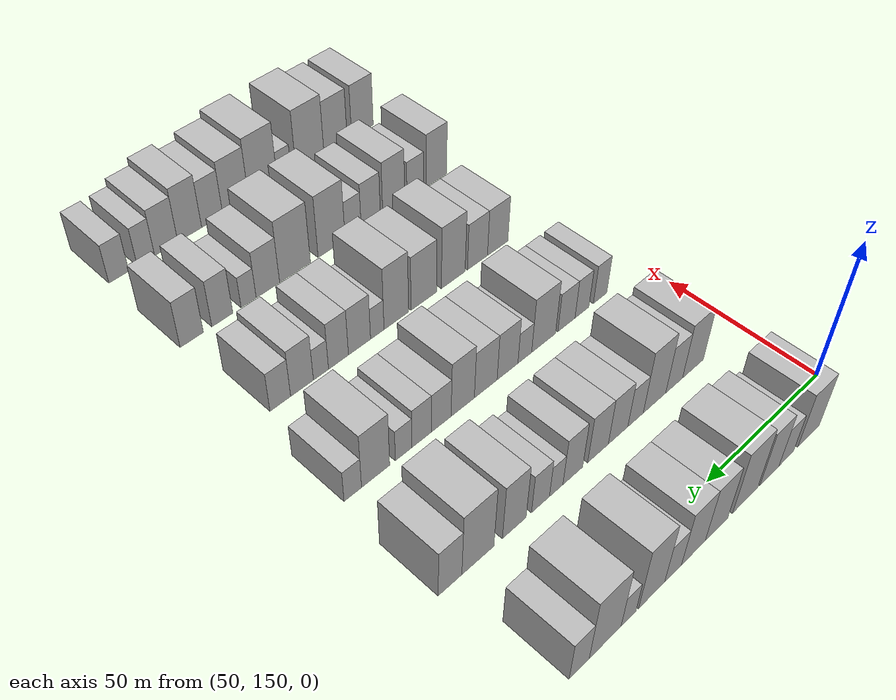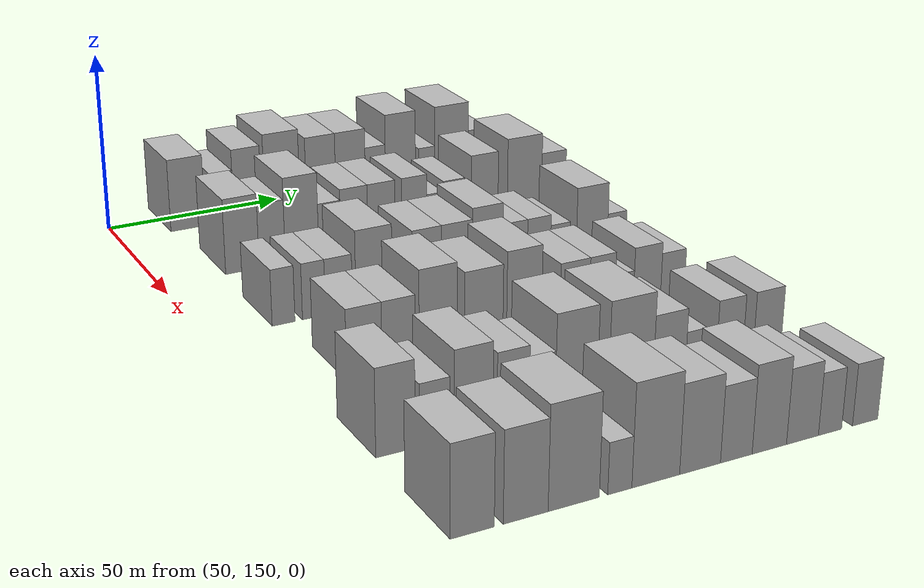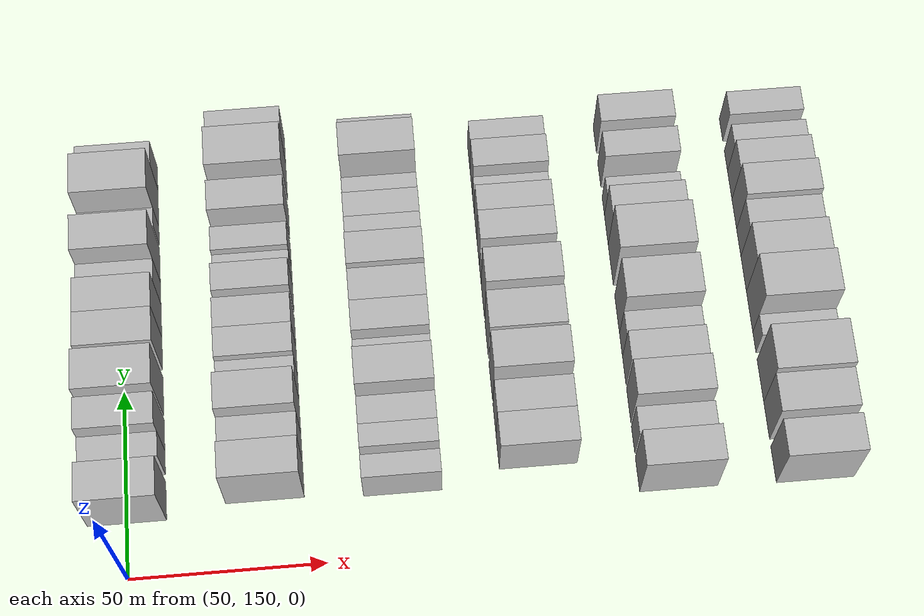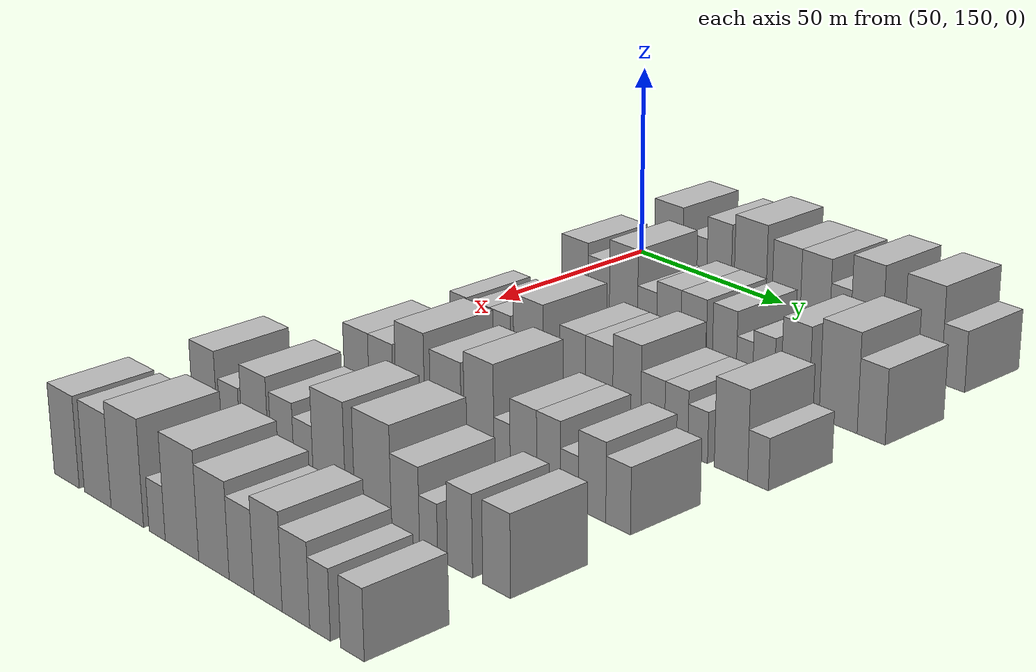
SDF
<sdf version="1.6">
 <world name="default">
  <model name="building_77">
   <static>1</static>
   <pose>50.0000 169.6008 0 0.000000 0.000000 0.000000</pose>
   <link name="link">
    <pose>0 0 10.50 0 0 0</pose>
    <collision name="collision"><geometry><box><size>20.0000 10.0778 21.0000</size></box></geometry></collision>
    <visual name="visual">
     <cast_shadows>0</cast_shadows>
     <geometry><box><size>20.0000 10.0778 21.0000</size></box></geometry>
     <material>
      <script>
       <uri>model://HANNAS_wall/materials/scripts</uri>
       <uri>model://HANNAS_wall/materials/textures</uri>
       <name>vrc/HANNAS_wall</name>
      </script>
     </material>
    </visual>
   </link>
  </model>
  <model name="building_78">
   <static>1</static>
   <pose>50.0000 179.9254 0 0.000000 0.000000 0.000000</pose>
   <link name="link">
    <pose>0 0 7.50 0 0 0</pose>
    <collision name="collision"><geometry><box><size>20.0000 6.5714 15.0000</size></box></geometry></collision>
    <visual name="visual">
     <cast_shadows>0</cast_shadows>
     <geometry><box><size>20.0000 6.5714 15.0000</size></box></geometry>
     <material>
      <script>
       <uri>model://HANNAS_wall/materials/scripts</uri>
       <uri>model://HANNAS_wall/materials/textures</uri>
       <name>vrc/HANNAS_wall</name>
      </script>
     </material>
    </visual>
   </link>
  </model>
  <model name="building_79">
   <static>1</static>
   <pose>50.0000 187.4204 0 0.000000 0.000000 0.000000</pose>
   <link name="link">
    <pose>0 0 10.50 0 0 0</pose>
    <collision name="collision"><geometry><box><size>20.0000 8.4186 21.0000</size></box></geometry></collision>
    <visual name="visual">
     <cast_shadows>0</cast_shadows>
     <geometry><box><size>20.0000 8.4186 21.0000</size></box></geometry>
     <material>
      <script>
       <uri>model://HANNAS_wall/materials/scripts</uri>
       <uri>model://HANNAS_wall/materials/textures</uri>
       <name>vrc/HANNAS_wall</name>
      </script>
     </material>
    </visual>
   </link>
  </model>
  <model name="building_80">
   <static>1</static>
   <pose>50.0000 198.0092 0 0.000000 0.000000 0.000000</pose>
   <link name="link">
    <pose>0 0 12.00 0 0 0</pose>
    <collision name="collision"><geometry><box><size>20.0000 10.7590 24.0000</size></box></geometry></collision>
    <visual name="visual">
     <cast_shadows>0</cast_shadows>
     <geometry><box><size>20.0000 10.7590 24.0000</size></box></geometry>
     <material>
      <script>
       <uri>model://HANNAS_wall/materials/scripts</uri>
       <uri>model://HANNAS_wall/materials/textures</uri>
       <name>vrc/HANNAS_wall</name>
      </script>
     </material>
    </visual>
   </link>
  </model>
  <model name="building_81">
   <static>1</static>
   <pose>50.0000 210.0271 0 0.000000 0.000000 0.000000</pose>
   <link name="link">
    <pose>0 0 10.50 0 0 0</pose>
    <collision name="collision"><geometry><box><size>20.0000 9.2769 21.0000</size></box></geometry></collision>
    <visual name="visual">
     <cast_shadows>0</cast_shadows>
     <geometry><box><size>20.0000 9.2769 21.0000</size></box></geometry>
     <material>
      <script>
       <uri>model://HANNAS_wall/materials/scripts</uri>
       <uri>model://HANNAS_wall/materials/textures</uri>
       <name>vrc/HANNAS_wall</name>
      </script>
     </material>
    </visual>
   </link>
  </model>
  <model name="building_82">
   <static>1</static>
   <pose>50.0000 219.4054 0 0.000000 0.000000 0.000000</pose>
   <link name="link">
    <pose>0 0 10.50 0 0 0</pose>
    <collision name="collision"><geometry><box><size>20.0000 9.4798 21.0000</size></box></geometry></collision>
    <visual name="visual">
     <cast_shadows>0</cast_shadows>
     <geometry><box><size>20.0000 9.4798 21.0000</size></box></geometry>
     <material>
      <script>
       <uri>model://HANNAS_wall/materials/scripts</uri>
       <uri>model://HANNAS_wall/materials/textures</uri>
       <name>vrc/HANNAS_wall</name>
      </script>
     </material>
    </visual>
   </link>
  </model>
  <model name="building_83">
   <static>1</static>
   <pose>50.0000 227.3991 0 0.000000 0.000000 0.000000</pose>
   <link name="link">
    <pose>0 0 7.50 0 0 0</pose>
    <collision name="collision"><geometry><box><size>20.0000 6.5075 15.0000</size></box></geometry></collision>
    <visual name="visual">
     <cast_shadows>0</cast_shadows>
     <geometry><box><size>20.0000 6.5075 15.0000</size></box></geometry>
     <material>
      <script>
       <uri>model://HANNAS_wall/materials/scripts</uri>
       <uri>model://HANNAS_wall/materials/textures</uri>
       <name>vrc/HANNAS_wall</name>
      </script>
     </material>
    </visual>
   </link>
  </model>
  <model name="building_84">
   <static>1</static>
   <pose>50.0000 235.5569 0 0.000000 0.000000 0.000000</pose>
   <link name="link">
    <pose>0 0 12.00 0 0 0</pose>
    <collision name="collision"><geometry><box><size>20.0000 9.8081 24.0000</size></box></geometry></collision>
    <visual name="visual">
     <cast_shadows>0</cast_shadows>
     <geometry><box><size>20.0000 9.8081 24.0000</size></box></geometry>
     <material>
      <script>
       <uri>model://HANNAS_wall/materials/scripts</uri>
       <uri>model://HANNAS_wall/materials/textures</uri>
       <name>vrc/HANNAS_wall</name>
      </script>
     </material>
    </visual>
   </link>
  </model>
  <model name="building_85">
   <static>1</static>
   <pose>50.0000 244.1753 0 0.000000 0.000000 0.000000</pose>
   <link name="link">
    <pose>0 0 6.00 0 0 0</pose>
    <collision name="collision"><geometry><box><size>20.0000 5.4287 12.0000</size></box></geometry></collision>
    <visual name="visual">
     <cast_shadows>0</cast_shadows>
     <geometry><box><size>20.0000 5.4287 12.0000</size></box></geometry>
     <material>
      <script>
       <uri>model://HANNAS_wall/materials/scripts</uri>
       <uri>model://HANNAS_wall/materials/textures</uri>
       <name>vrc/HANNAS_wall</name>
      </script>
     </material>
    </visual>
   </link>
  </model>
  <model name="building_86">
   <static>1</static>
   <pose>50.0000 252.5469 0 0.000000 0.000000 0.000000</pose>
   <link name="link">
    <pose>0 0 12.00 0 0 0</pose>
    <collision name="collision"><geometry><box><size>20.0000 11.3147 24.0000</size></box></geometry></collision>
    <visual name="visual">
     <cast_shadows>0</cast_shadows>
     <geometry><box><size>20.0000 11.3147 24.0000</size></box></geometry>
     <material>
      <script>
       <uri>model://HANNAS_wall/materials/scripts</uri>
       <uri>model://HANNAS_wall/materials/textures</uri>
       <name>vrc/HANNAS_wall</name>
      </script>
     </material>
    </visual>
   </link>
  </model>
  <model name="building_87">
   <static>1</static>
   <pose>50.0000 261.6613 0 0.000000 0.000000 0.000000</pose>
   <link name="link">
    <pose>0 0 7.50 0 0 0</pose>
    <collision name="collision"><geometry><box><size>20.0000 6.9141 15.0000</size></box></geometry></collision>
    <visual name="visual">
     <cast_shadows>0</cast_shadows>
     <geometry><box><size>20.0000 6.9141 15.0000</size></box></geometry>
     <material>
      <script>
       <uri>model://HANNAS_wall/materials/scripts</uri>
       <uri>model://HANNAS_wall/materials/textures</uri>
       <name>vrc/HANNAS_wall</name>
      </script>
     </material>
    </visual>
   </link>
  </model>
  <model name="building_204">
   <static>1</static>
   <pose>85.0000 172.3612 0 0.000000 0.000000 0.000000</pose>
   <link name="link">
    <pose>0 0 10.50 0 0 0</pose>
    <collision name="collision"><geometry><box><size>20.0000 9.4116 21.0000</size></box></geometry></collision>
    <visual name="visual">
     <cast_shadows>0</cast_shadows>
     <geometry><box><size>20.0000 9.4116 21.0000</size></box></geometry>
     <material>
      <script>
       <uri>model://HANNAS_wall/materials/scripts</uri>
       <uri>model://HANNAS_wall/materials/textures</uri>
       <name>vrc/HANNAS_wall</name>
      </script>
     </material>
    </visual>
   </link>
  </model>
  <model name="building_205">
   <static>1</static>
   <pose>85.0000 180.7845 0 0.000000 0.000000 0.000000</pose>
   <link name="link">
    <pose>0 0 9.00 0 0 0</pose>
    <collision name="collision"><geometry><box><size>20.0000 7.4351 18.0000</size></box></geometry></collision>
    <visual name="visual">
     <cast_shadows>0</cast_shadows>
     <geometry><box><size>20.0000 7.4351 18.0000</size></box></geometry>
     <material>
      <script>
       <uri>model://HANNAS_wall/materials/scripts</uri>
       <uri>model://HANNAS_wall/materials/textures</uri>
       <name>vrc/HANNAS_wall</name>
      </script>
     </material>
    </visual>
   </link>
  </model>
  <model name="building_206">
   <static>1</static>
   <pose>85.0000 189.3465 0 0.000000 0.000000 0.000000</pose>
   <link name="link">
    <pose>0 0 12.00 0 0 0</pose>
    <collision name="collision"><geometry><box><size>20.0000 9.6888 24.0000</size></box></geometry></collision>
    <visual name="visual">
     <cast_shadows>0</cast_shadows>
     <geometry><box><size>20.0000 9.6888 24.0000</size></box></geometry>
     <material>
      <script>
       <uri>model://HANNAS_wall/materials/scripts</uri>
       <uri>model://HANNAS_wall/materials/textures</uri>
       <name>vrc/HANNAS_wall</name>
      </script>
     </material>
    </visual>
   </link>
  </model>
  <model name="building_207">
   <static>1</static>
   <pose>85.0000 197.4402 0 0.000000 0.000000 0.000000</pose>
   <link name="link">
    <pose>0 0 7.50 0 0 0</pose>
    <collision name="collision"><geometry><box><size>20.0000 6.4986 15.0000</size></box></geometry></collision>
    <visual name="visual">
     <cast_shadows>0</cast_shadows>
     <geometry><box><size>20.0000 6.4986 15.0000</size></box></geometry>
     <material>
      <script>
       <uri>model://HANNAS_wall/materials/scripts</uri>
       <uri>model://HANNAS_wall/materials/textures</uri>
       <name>vrc/HANNAS_wall</name>
      </script>
     </material>
    </visual>
   </link>
  </model>
  <model name="building_208">
   <static>1</static>
   <pose>85.0000 204.7142 0 0.000000 0.000000 0.000000</pose>
   <link name="link">
    <pose>0 0 9.00 0 0 0</pose>
    <collision name="collision"><geometry><box><size>20.0000 8.0495 18.0000</size></box></geometry></collision>
    <visual name="visual">
     <cast_shadows>0</cast_shadows>
     <geometry><box><size>20.0000 8.0495 18.0000</size></box></geometry>
     <material>
      <script>
       <uri>model://HANNAS_wall/materials/scripts</uri>
       <uri>model://HANNAS_wall/materials/textures</uri>
       <name>vrc/HANNAS_wall</name>
      </script>
     </material>
    </visual>
   </link>
  </model>
  <model name="building_209">
   <static>1</static>
   <pose>85.0000 212.8625 0 0.000000 0.000000 0.000000</pose>
   <link name="link">
    <pose>0 0 9.00 0 0 0</pose>
    <collision name="collision"><geometry><box><size>20.0000 8.2471 18.0000</size></box></geometry></collision>
    <visual name="visual">
     <cast_shadows>0</cast_shadows>
     <geometry><box><size>20.0000 8.2471 18.0000</size></box></geometry>
     <material>
      <script>
       <uri>model://HANNAS_wall/materials/scripts</uri>
       <uri>model://HANNAS_wall/materials/textures</uri>
       <name>vrc/HANNAS_wall</name>
      </script>
     </material>
    </visual>
   </link>
  </model>
  <model name="building_210">
   <static>1</static>
   <pose>85.0000 222.8171 0 0.000000 0.000000 0.000000</pose>
   <link name="link">
    <pose>0 0 9.00 0 0 0</pose>
    <collision name="collision"><geometry><box><size>20.0000 7.6621 18.0000</size></box></geometry></collision>
    <visual name="visual">
     <cast_shadows>0</cast_shadows>
     <geometry><box><size>20.0000 7.6621 18.0000</size></box></geometry>
     <material>
      <script>
       <uri>model://HANNAS_wall/materials/scripts</uri>
       <uri>model://HANNAS_wall/materials/textures</uri>
       <name>vrc/HANNAS_wall</name>
      </script>
     </material>
    </visual>
   </link>
  </model>
  <model name="building_211">
   <static>1</static>
   <pose>85.0000 229.2133 0 0.000000 0.000000 0.000000</pose>
   <link name="link">
    <pose>0 0 6.00 0 0 0</pose>
    <collision name="collision"><geometry><box><size>20.0000 5.1302 12.0000</size></box></geometry></collision>
    <visual name="visual">
     <cast_shadows>0</cast_shadows>
     <geometry><box><size>20.0000 5.1302 12.0000</size></box></geometry>
     <material>
      <script>
       <uri>model://HANNAS_wall/materials/scripts</uri>
       <uri>model://HANNAS_wall/materials/textures</uri>
       <name>vrc/HANNAS_wall</name>
      </script>
     </material>
    </visual>
   </link>
  </model>
  <model name="building_212">
   <static>1</static>
   <pose>85.0000 235.1279 0 0.000000 0.000000 0.000000</pose>
   <link name="link">
    <pose>0 0 7.50 0 0 0</pose>
    <collision name="collision"><geometry><box><size>20.0000 6.6992 15.0000</size></box></geometry></collision>
    <visual name="visual">
     <cast_shadows>0</cast_shadows>
     <geometry><box><size>20.0000 6.6992 15.0000</size></box></geometry>
     <material>
      <script>
       <uri>model://HANNAS_wall/materials/scripts</uri>
       <uri>model://HANNAS_wall/materials/textures</uri>
       <name>vrc/HANNAS_wall</name>
      </script>
     </material>
    </visual>
   </link>
  </model>
  <model name="building_213">
   <static>1</static>
   <pose>85.0000 244.7618 0 0.000000 0.000000 0.000000</pose>
   <link name="link">
    <pose>0 0 10.50 0 0 0</pose>
    <collision name="collision"><geometry><box><size>20.0000 8.5686 21.0000</size></box></geometry></collision>
    <visual name="visual">
     <cast_shadows>0</cast_shadows>
     <geometry><box><size>20.0000 8.5686 21.0000</size></box></geometry>
     <material>
      <script>
       <uri>model://HANNAS_wall/materials/scripts</uri>
       <uri>model://HANNAS_wall/materials/textures</uri>
       <name>vrc/HANNAS_wall</name>
      </script>
     </material>
    </visual>
   </link>
  </model>
  <model name="building_214">
   <static>1</static>
   <pose>85.0000 257.6041 0 0.000000 0.000000 0.000000</pose>
   <link name="link">
    <pose>0 0 12.00 0 0 0</pose>
    <collision name="collision"><geometry><box><size>20.0000 11.1158 24.0000</size></box></geometry></collision>
    <visual name="visual">
     <cast_shadows>0</cast_shadows>
     <geometry><box><size>20.0000 11.1158 24.0000</size></box></geometry>
     <material>
      <script>
       <uri>model://HANNAS_wall/materials/scripts</uri>
       <uri>model://HANNAS_wall/materials/textures</uri>
       <name>vrc/HANNAS_wall</name>
      </script>
     </material>
    </visual>
   </link>
  </model>
  <model name="building_215">
   <static>1</static>
   <pose>85.0000 267.1435 0 0.000000 0.000000 0.000000</pose>
   <link name="link">
    <pose>0 0 9.00 0 0 0</pose>
    <collision name="collision"><geometry><box><size>20.0000 7.9631 18.0000</size></box></geometry></collision>
    <visual name="visual">
     <cast_shadows>0</cast_shadows>
     <geometry><box><size>20.0000 7.9631 18.0000</size></box></geometry>
     <material>
      <script>
       <uri>model://HANNAS_wall/materials/scripts</uri>
       <uri>model://HANNAS_wall/materials/textures</uri>
       <name>vrc/HANNAS_wall</name>
      </script>
     </material>
    </visual>
   </link>
  </model>
  <model name="building_332">
   <static>1</static>
   <pose>120.0000 169.6998 0 0.000000 0.000000 0.000000</pose>
   <link name="link">
    <pose>0 0 7.50 0 0 0</pose>
    <collision name="collision"><geometry><box><size>20.0000 6.0371 15.0000</size></box></geometry></collision>
    <visual name="visual">
     <cast_shadows>0</cast_shadows>
     <geometry><box><size>20.0000 6.0371 15.0000</size></box></geometry>
     <material>
      <script>
       <uri>model://HANNAS_wall/materials/scripts</uri>
       <uri>model://HANNAS_wall/materials/textures</uri>
       <name>vrc/HANNAS_wall</name>
      </script>
     </material>
    </visual>
   </link>
  </model>
  <model name="building_333">
   <static>1</static>
   <pose>120.0000 177.7813 0 0.000000 0.000000 0.000000</pose>
   <link name="link">
    <pose>0 0 7.50 0 0 0</pose>
    <collision name="collision"><geometry><box><size>20.0000 6.1261 15.0000</size></box></geometry></collision>
    <visual name="visual">
     <cast_shadows>0</cast_shadows>
     <geometry><box><size>20.0000 6.1261 15.0000</size></box></geometry>
     <material>
      <script>
       <uri>model://HANNAS_wall/materials/scripts</uri>
       <uri>model://HANNAS_wall/materials/textures</uri>
       <name>vrc/HANNAS_wall</name>
      </script>
     </material>
    </visual>
   </link>
  </model>
  <model name="building_334">
   <static>1</static>
   <pose>120.0000 184.5488 0 0.000000 0.000000 0.000000</pose>
   <link name="link">
    <pose>0 0 7.50 0 0 0</pose>
    <collision name="collision"><geometry><box><size>20.0000 7.4088 15.0000</size></box></geometry></collision>
    <visual name="visual">
     <cast_shadows>0</cast_shadows>
     <geometry><box><size>20.0000 7.4088 15.0000</size></box></geometry>
     <material>
      <script>
       <uri>model://HANNAS_wall/materials/scripts</uri>
       <uri>model://HANNAS_wall/materials/textures</uri>
       <name>vrc/HANNAS_wall</name>
      </script>
     </material>
    </visual>
   </link>
  </model>
  <model name="building_335">
   <static>1</static>
   <pose>120.0000 194.2753 0 0.000000 0.000000 0.000000</pose>
   <link name="link">
    <pose>0 0 10.50 0 0 0</pose>
    <collision name="collision"><geometry><box><size>20.0000 10.0443 21.0000</size></box></geometry></collision>
    <visual name="visual">
     <cast_shadows>0</cast_shadows>
     <geometry><box><size>20.0000 10.0443 21.0000</size></box></geometry>
     <material>
      <script>
       <uri>model://HANNAS_wall/materials/scripts</uri>
       <uri>model://HANNAS_wall/materials/textures</uri>
       <name>vrc/HANNAS_wall</name>
      </script>
     </material>
    </visual>
   </link>
  </model>
  <model name="building_336">
   <static>1</static>
   <pose>120.0000 202.1174 0 0.000000 0.000000 0.000000</pose>
   <link name="link">
    <pose>0 0 6.00 0 0 0</pose>
    <collision name="collision"><geometry><box><size>20.0000 5.6399 12.0000</size></box></geometry></collision>
    <visual name="visual">
     <cast_shadows>0</cast_shadows>
     <geometry><box><size>20.0000 5.6399 12.0000</size></box></geometry>
     <material>
      <script>
       <uri>model://HANNAS_wall/materials/scripts</uri>
       <uri>model://HANNAS_wall/materials/textures</uri>
       <name>vrc/HANNAS_wall</name>
      </script>
     </material>
    </visual>
   </link>
  </model>
  <model name="building_337">
   <static>1</static>
   <pose>120.0000 209.1270 0 0.000000 0.000000 0.000000</pose>
   <link name="link">
    <pose>0 0 9.00 0 0 0</pose>
    <collision name="collision"><geometry><box><size>20.0000 8.3792 18.0000</size></box></geometry></collision>
    <visual name="visual">
     <cast_shadows>0</cast_shadows>
     <geometry><box><size>20.0000 8.3792 18.0000</size></box></geometry>
     <material>
      <script>
       <uri>model://HANNAS_wall/materials/scripts</uri>
       <uri>model://HANNAS_wall/materials/textures</uri>
       <name>vrc/HANNAS_wall</name>
      </script>
     </material>
    </visual>
   </link>
  </model>
  <model name="building_338">
   <static>1</static>
   <pose>120.0000 217.7810 0 0.000000 0.000000 0.000000</pose>
   <link name="link">
    <pose>0 0 9.00 0 0 0</pose>
    <collision name="collision"><geometry><box><size>20.0000 8.9289 18.0000</size></box></geometry></collision>
    <visual name="visual">
     <cast_shadows>0</cast_shadows>
     <geometry><box><size>20.0000 8.9289 18.0000</size></box></geometry>
     <material>
      <script>
       <uri>model://HANNAS_wall/materials/scripts</uri>
       <uri>model://HANNAS_wall/materials/textures</uri>
       <name>vrc/HANNAS_wall</name>
      </script>
     </material>
    </visual>
   </link>
  </model>
  <model name="building_339">
   <static>1</static>
   <pose>120.0000 226.6923 0 0.000000 0.000000 0.000000</pose>
   <link name="link">
    <pose>0 0 10.50 0 0 0</pose>
    <collision name="collision"><geometry><box><size>20.0000 8.8937 21.0000</size></box></geometry></collision>
    <visual name="visual">
     <cast_shadows>0</cast_shadows>
     <geometry><box><size>20.0000 8.8937 21.0000</size></box></geometry>
     <material>
      <script>
       <uri>model://HANNAS_wall/materials/scripts</uri>
       <uri>model://HANNAS_wall/materials/textures</uri>
       <name>vrc/HANNAS_wall</name>
      </script>
     </material>
    </visual>
   </link>
  </model>
  <model name="building_340">
   <static>1</static>
   <pose>120.0000 234.8284 0 0.000000 0.000000 0.000000</pose>
   <link name="link">
    <pose>0 0 7.50 0 0 0</pose>
    <collision name="collision"><geometry><box><size>20.0000 7.3784 15.0000</size></box></geometry></collision>
    <visual name="visual">
     <cast_shadows>0</cast_shadows>
     <geometry><box><size>20.0000 7.3784 15.0000</size></box></geometry>
     <material>
      <script>
       <uri>model://HANNAS_wall/materials/scripts</uri>
       <uri>model://HANNAS_wall/materials/textures</uri>
       <name>vrc/HANNAS_wall</name>
      </script>
     </material>
    </visual>
   </link>
  </model>
  <model name="building_341">
   <static>1</static>
   <pose>120.0000 242.0435 0 0.000000 0.000000 0.000000</pose>
   <link name="link">
    <pose>0 0 7.50 0 0 0</pose>
    <collision name="collision"><geometry><box><size>20.0000 7.0519 15.0000</size></box></geometry></collision>
    <visual name="visual">
     <cast_shadows>0</cast_shadows>
     <geometry><box><size>20.0000 7.0519 15.0000</size></box></geometry>
     <material>
      <script>
       <uri>model://HANNAS_wall/materials/scripts</uri>
       <uri>model://HANNAS_wall/materials/textures</uri>
       <name>vrc/HANNAS_wall</name>
      </script>
     </material>
    </visual>
   </link>
  </model>
  <model name="building_342">
   <static>1</static>
   <pose>120.0000 248.5341 0 0.000000 0.000000 0.000000</pose>
   <link name="link">
    <pose>0 0 6.00 0 0 0</pose>
    <collision name="collision"><geometry><box><size>20.0000 5.9293 12.0000</size></box></geometry></collision>
    <visual name="visual">
     <cast_shadows>0</cast_shadows>
     <geometry><box><size>20.0000 5.9293 12.0000</size></box></geometry>
     <material>
      <script>
       <uri>model://HANNAS_wall/materials/scripts</uri>
       <uri>model://HANNAS_wall/materials/textures</uri>
       <name>vrc/HANNAS_wall</name>
      </script>
     </material>
    </visual>
   </link>
  </model>
  <model name="building_343">
   <static>1</static>
   <pose>120.0000 258.3551 0 0.000000 0.000000 0.000000</pose>
   <link name="link">
    <pose>0 0 10.50 0 0 0</pose>
    <collision name="collision"><geometry><box><size>20.0000 9.7128 21.0000</size></box></geometry></collision>
    <visual name="visual">
     <cast_shadows>0</cast_shadows>
     <geometry><box><size>20.0000 9.7128 21.0000</size></box></geometry>
     <material>
      <script>
       <uri>model://HANNAS_wall/materials/scripts</uri>
       <uri>model://HANNAS_wall/materials/textures</uri>
       <name>vrc/HANNAS_wall</name>
      </script>
     </material>
    </visual>
   </link>
  </model>
  <model name="building_344">
   <static>1</static>
   <pose>120.0000 266.1746 0 0.000000 0.000000 0.000000</pose>
   <link name="link">
    <pose>0 0 6.00 0 0 0</pose>
    <collision name="collision"><geometry><box><size>20.0000 5.9261 12.0000</size></box></geometry></collision>
    <visual name="visual">
     <cast_shadows>0</cast_shadows>
     <geometry><box><size>20.0000 5.9261 12.0000</size></box></geometry>
     <material>
      <script>
       <uri>model://HANNAS_wall/materials/scripts</uri>
       <uri>model://HANNAS_wall/materials/textures</uri>
       <name>vrc/HANNAS_wall</name>
      </script>
     </material>
    </visual>
   </link>
  </model>
  <model name="building_460">
   <static>1</static>
   <pose>155.0000 175.4557 0 0.000000 0.000000 0.000000</pose>
   <link name="link">
    <pose>0 0 9.00 0 0 0</pose>
    <collision name="collision"><geometry><box><size>20.0000 8.9719 18.0000</size></box></geometry></collision>
    <visual name="visual">
     <cast_shadows>0</cast_shadows>
     <geometry><box><size>20.0000 8.9719 18.0000</size></box></geometry>
     <material>
      <script>
       <uri>model://HANNAS_wall/materials/scripts</uri>
       <uri>model://HANNAS_wall/materials/textures</uri>
       <name>vrc/HANNAS_wall</name>
      </script>
     </material>
    </visual>
   </link>
  </model>
  <model name="building_461">
   <static>1</static>
   <pose>155.0000 184.2515 0 0.000000 0.000000 0.000000</pose>
   <link name="link">
    <pose>0 0 9.00 0 0 0</pose>
    <collision name="collision"><geometry><box><size>20.0000 8.6197 18.0000</size></box></geometry></collision>
    <visual name="visual">
     <cast_shadows>0</cast_shadows>
     <geometry><box><size>20.0000 8.6197 18.0000</size></box></geometry>
     <material>
      <script>
       <uri>model://HANNAS_wall/materials/scripts</uri>
       <uri>model://HANNAS_wall/materials/textures</uri>
       <name>vrc/HANNAS_wall</name>
      </script>
     </material>
    </visual>
   </link>
  </model>
  <model name="building_462">
   <static>1</static>
   <pose>155.0000 194.5439 0 0.000000 0.000000 0.000000</pose>
   <link name="link">
    <pose>0 0 12.00 0 0 0</pose>
    <collision name="collision"><geometry><box><size>20.0000 9.9651 24.0000</size></box></geometry></collision>
    <visual name="visual">
     <cast_shadows>0</cast_shadows>
     <geometry><box><size>20.0000 9.9651 24.0000</size></box></geometry>
     <material>
      <script>
       <uri>model://HANNAS_wall/materials/scripts</uri>
       <uri>model://HANNAS_wall/materials/textures</uri>
       <name>vrc/HANNAS_wall</name>
      </script>
     </material>
    </visual>
   </link>
  </model>
  <model name="building_463">
   <static>1</static>
   <pose>155.0000 206.6793 0 0.000000 0.000000 0.000000</pose>
   <link name="link">
    <pose>0 0 10.50 0 0 0</pose>
    <collision name="collision"><geometry><box><size>20.0000 10.3057 21.0000</size></box></geometry></collision>
    <visual name="visual">
     <cast_shadows>0</cast_shadows>
     <geometry><box><size>20.0000 10.3057 21.0000</size></box></geometry>
     <material>
      <script>
       <uri>model://HANNAS_wall/materials/scripts</uri>
       <uri>model://HANNAS_wall/materials/textures</uri>
       <name>vrc/HANNAS_wall</name>
      </script>
     </material>
    </visual>
   </link>
  </model>
  <model name="building_464">
   <static>1</static>
   <pose>155.0000 217.6388 0 0.000000 0.000000 0.000000</pose>
   <link name="link">
    <pose>0 0 12.00 0 0 0</pose>
    <collision name="collision"><geometry><box><size>20.0000 9.6133 24.0000</size></box></geometry></collision>
    <visual name="visual">
     <cast_shadows>0</cast_shadows>
     <geometry><box><size>20.0000 9.6133 24.0000</size></box></geometry>
     <material>
      <script>
       <uri>model://HANNAS_wall/materials/scripts</uri>
       <uri>model://HANNAS_wall/materials/textures</uri>
       <name>vrc/HANNAS_wall</name>
      </script>
     </material>
    </visual>
   </link>
  </model>
  <model name="building_465">
   <static>1</static>
   <pose>155.0000 225.0344 0 0.000000 0.000000 0.000000</pose>
   <link name="link">
    <pose>0 0 6.00 0 0 0</pose>
    <collision name="collision"><geometry><box><size>20.0000 5.1779 12.0000</size></box></geometry></collision>
    <visual name="visual">
     <cast_shadows>0</cast_shadows>
     <geometry><box><size>20.0000 5.1779 12.0000</size></box></geometry>
     <material>
      <script>
       <uri>model://HANNAS_wall/materials/scripts</uri>
       <uri>model://HANNAS_wall/materials/textures</uri>
       <name>vrc/HANNAS_wall</name>
      </script>
     </material>
    </visual>
   </link>
  </model>
  <model name="building_466">
   <static>1</static>
   <pose>155.0000 231.7896 0 0.000000 0.000000 0.000000</pose>
   <link name="link">
    <pose>0 0 9.00 0 0 0</pose>
    <collision name="collision"><geometry><box><size>20.0000 8.3325 18.0000</size></box></geometry></collision>
    <visual name="visual">
     <cast_shadows>0</cast_shadows>
     <geometry><box><size>20.0000 8.3325 18.0000</size></box></geometry>
     <material>
      <script>
       <uri>model://HANNAS_wall/materials/scripts</uri>
       <uri>model://HANNAS_wall/materials/textures</uri>
       <name>vrc/HANNAS_wall</name>
      </script>
     </material>
    </visual>
   </link>
  </model>
  <model name="building_467">
   <static>1</static>
   <pose>155.0000 239.6263 0 0.000000 0.000000 0.000000</pose>
   <link name="link">
    <pose>0 0 9.00 0 0 0</pose>
    <collision name="collision"><geometry><box><size>20.0000 7.3409 18.0000</size></box></geometry></collision>
    <visual name="visual">
     <cast_shadows>0</cast_shadows>
     <geometry><box><size>20.0000 7.3409 18.0000</size></box></geometry>
     <material>
      <script>
       <uri>model://HANNAS_wall/materials/scripts</uri>
       <uri>model://HANNAS_wall/materials/textures</uri>
       <name>vrc/HANNAS_wall</name>
      </script>
     </material>
    </visual>
   </link>
  </model>
  <model name="building_468">
   <static>1</static>
   <pose>155.0000 246.0268 0 0.000000 0.000000 0.000000</pose>
   <link name="link">
    <pose>0 0 6.00 0 0 0</pose>
    <collision name="collision"><geometry><box><size>20.0000 5.4602 12.0000</size></box></geometry></collision>
    <visual name="visual">
     <cast_shadows>0</cast_shadows>
     <geometry><box><size>20.0000 5.4602 12.0000</size></box></geometry>
     <material>
      <script>
       <uri>model://HANNAS_wall/materials/scripts</uri>
       <uri>model://HANNAS_wall/materials/textures</uri>
       <name>vrc/HANNAS_wall</name>
      </script>
     </material>
    </visual>
   </link>
  </model>
  <model name="building_469">
   <static>1</static>
   <pose>155.0000 252.7938 0 0.000000 0.000000 0.000000</pose>
   <link name="link">
    <pose>0 0 9.00 0 0 0</pose>
    <collision name="collision"><geometry><box><size>20.0000 8.0737 18.0000</size></box></geometry></collision>
    <visual name="visual">
     <cast_shadows>0</cast_shadows>
     <geometry><box><size>20.0000 8.0737 18.0000</size></box></geometry>
     <material>
      <script>
       <uri>model://HANNAS_wall/materials/scripts</uri>
       <uri>model://HANNAS_wall/materials/textures</uri>
       <name>vrc/HANNAS_wall</name>
      </script>
     </material>
    </visual>
   </link>
  </model>
  <model name="building_470">
   <static>1</static>
   <pose>155.0000 260.4201 0 0.000000 0.000000 0.000000</pose>
   <link name="link">
    <pose>0 0 7.50 0 0 0</pose>
    <collision name="collision"><geometry><box><size>20.0000 7.1788 15.0000</size></box></geometry></collision>
    <visual name="visual">
     <cast_shadows>0</cast_shadows>
     <geometry><box><size>20.0000 7.1788 15.0000</size></box></geometry>
     <material>
      <script>
       <uri>model://HANNAS_wall/materials/scripts</uri>
       <uri>model://HANNAS_wall/materials/textures</uri>
       <name>vrc/HANNAS_wall</name>
      </script>
     </material>
    </visual>
   </link>
  </model>
  <model name="building_586">
   <static>1</static>
   <pose>190.0000 166.5743 0 0.000000 0.000000 0.000000</pose>
   <link name="link">
    <pose>0 0 10.50 0 0 0</pose>
    <collision name="collision"><geometry><box><size>20.0000 9.2700 21.0000</size></box></geometry></collision>
    <visual name="visual">
     <cast_shadows>0</cast_shadows>
     <geometry><box><size>20.0000 9.2700 21.0000</size></box></geometry>
     <material>
      <script>
       <uri>model://HANNAS_wall/materials/scripts</uri>
       <uri>model://HANNAS_wall/materials/textures</uri>
       <name>vrc/HANNAS_wall</name>
      </script>
     </material>
    </visual>
   </link>
  </model>
  <model name="building_587">
   <static>1</static>
   <pose>190.0000 175.8810 0 0.000000 0.000000 0.000000</pose>
   <link name="link">
    <pose>0 0 7.50 0 0 0</pose>
    <collision name="collision"><geometry><box><size>20.0000 7.3435 15.0000</size></box></geometry></collision>
    <visual name="visual">
     <cast_shadows>0</cast_shadows>
     <geometry><box><size>20.0000 7.3435 15.0000</size></box></geometry>
     <material>
      <script>
       <uri>model://HANNAS_wall/materials/scripts</uri>
       <uri>model://HANNAS_wall/materials/textures</uri>
       <name>vrc/HANNAS_wall</name>
      </script>
     </material>
    </visual>
   </link>
  </model>
  <model name="building_588">
   <static>1</static>
   <pose>190.0000 185.2588 0 0.000000 0.000000 0.000000</pose>
   <link name="link">
    <pose>0 0 10.50 0 0 0</pose>
    <collision name="collision"><geometry><box><size>20.0000 9.4121 21.0000</size></box></geometry></collision>
    <visual name="visual">
     <cast_shadows>0</cast_shadows>
     <geometry><box><size>20.0000 9.4121 21.0000</size></box></geometry>
     <material>
      <script>
       <uri>model://HANNAS_wall/materials/scripts</uri>
       <uri>model://HANNAS_wall/materials/textures</uri>
       <name>vrc/HANNAS_wall</name>
      </script>
     </material>
    </visual>
   </link>
  </model>
  <model name="building_589">
   <static>1</static>
   <pose>190.0000 194.9746 0 0.000000 0.000000 0.000000</pose>
   <link name="link">
    <pose>0 0 9.00 0 0 0</pose>
    <collision name="collision"><geometry><box><size>20.0000 8.0194 18.0000</size></box></geometry></collision>
    <visual name="visual">
     <cast_shadows>0</cast_shadows>
     <geometry><box><size>20.0000 8.0194 18.0000</size></box></geometry>
     <material>
      <script>
       <uri>model://HANNAS_wall/materials/scripts</uri>
       <uri>model://HANNAS_wall/materials/textures</uri>
       <name>vrc/HANNAS_wall</name>
      </script>
     </material>
    </visual>
   </link>
  </model>
  <model name="building_590">
   <static>1</static>
   <pose>190.0000 202.3003 0 0.000000 0.000000 0.000000</pose>
   <link name="link">
    <pose>0 0 7.50 0 0 0</pose>
    <collision name="collision"><geometry><box><size>20.0000 6.6321 15.0000</size></box></geometry></collision>
    <visual name="visual">
     <cast_shadows>0</cast_shadows>
     <geometry><box><size>20.0000 6.6321 15.0000</size></box></geometry>
     <material>
      <script>
       <uri>model://HANNAS_wall/materials/scripts</uri>
       <uri>model://HANNAS_wall/materials/textures</uri>
       <name>vrc/HANNAS_wall</name>
      </script>
     </material>
    </visual>
   </link>
  </model>
  <model name="building_591">
   <static>1</static>
   <pose>190.0000 211.0478 0 0.000000 0.000000 0.000000</pose>
   <link name="link">
    <pose>0 0 12.00 0 0 0</pose>
    <collision name="collision"><geometry><box><size>20.0000 10.8628 24.0000</size></box></geometry></collision>
    <visual name="visual">
     <cast_shadows>0</cast_shadows>
     <geometry><box><size>20.0000 10.8628 24.0000</size></box></geometry>
     <material>
      <script>
       <uri>model://HANNAS_wall/materials/scripts</uri>
       <uri>model://HANNAS_wall/materials/textures</uri>
       <name>vrc/HANNAS_wall</name>
      </script>
     </material>
    </visual>
   </link>
  </model>
  <model name="building_592">
   <static>1</static>
   <pose>190.0000 225.4420 0 0.000000 0.000000 0.000000</pose>
   <link name="link">
    <pose>0 0 12.00 0 0 0</pose>
    <collision name="collision"><geometry><box><size>20.0000 11.9256 24.0000</size></box></geometry></collision>
    <visual name="visual">
     <cast_shadows>0</cast_shadows>
     <geometry><box><size>20.0000 11.9256 24.0000</size></box></geometry>
     <material>
      <script>
       <uri>model://HANNAS_wall/materials/scripts</uri>
       <uri>model://HANNAS_wall/materials/textures</uri>
       <name>vrc/HANNAS_wall</name>
      </script>
     </material>
    </visual>
   </link>
  </model>
  <model name="building_593">
   <static>1</static>
   <pose>190.0000 235.7994 0 0.000000 0.000000 0.000000</pose>
   <link name="link">
    <pose>0 0 9.00 0 0 0</pose>
    <collision name="collision"><geometry><box><size>20.0000 8.7892 18.0000</size></box></geometry></collision>
    <visual name="visual">
     <cast_shadows>0</cast_shadows>
     <geometry><box><size>20.0000 8.7892 18.0000</size></box></geometry>
     <material>
      <script>
       <uri>model://HANNAS_wall/materials/scripts</uri>
       <uri>model://HANNAS_wall/materials/textures</uri>
       <name>vrc/HANNAS_wall</name>
      </script>
     </material>
    </visual>
   </link>
  </model>
  <model name="building_594">
   <static>1</static>
   <pose>190.0000 242.9739 0 0.000000 0.000000 0.000000</pose>
   <link name="link">
    <pose>0 0 6.00 0 0 0</pose>
    <collision name="collision"><geometry><box><size>20.0000 5.5598 12.0000</size></box></geometry></collision>
    <visual name="visual">
     <cast_shadows>0</cast_shadows>
     <geometry><box><size>20.0000 5.5598 12.0000</size></box></geometry>
     <material>
      <script>
       <uri>model://HANNAS_wall/materials/scripts</uri>
       <uri>model://HANNAS_wall/materials/textures</uri>
       <name>vrc/HANNAS_wall</name>
      </script>
     </material>
    </visual>
   </link>
  </model>
  <model name="building_595">
   <static>1</static>
   <pose>190.0000 252.5158 0 0.000000 0.000000 0.000000</pose>
   <link name="link">
    <pose>0 0 9.00 0 0 0</pose>
    <collision name="collision"><geometry><box><size>20.0000 7.5239 18.0000</size></box></geometry></collision>
    <visual name="visual">
     <cast_shadows>0</cast_shadows>
     <geometry><box><size>20.0000 7.5239 18.0000</size></box></geometry>
     <material>
      <script>
       <uri>model://HANNAS_wall/materials/scripts</uri>
       <uri>model://HANNAS_wall/materials/textures</uri>
       <name>vrc/HANNAS_wall</name>
      </script>
     </material>
    </visual>
   </link>
  </model>
  <model name="building_596">
   <static>1</static>
   <pose>190.0000 263.3147 0 0.000000 0.000000 0.000000</pose>
   <link name="link">
    <pose>0 0 9.00 0 0 0</pose>
    <collision name="collision"><geometry><box><size>20.0000 8.0739 18.0000</size></box></geometry></collision>
    <visual name="visual">
     <cast_shadows>0</cast_shadows>
     <geometry><box><size>20.0000 8.0739 18.0000</size></box></geometry>
     <material>
      <script>
       <uri>model://HANNAS_wall/materials/scripts</uri>
       <uri>model://HANNAS_wall/materials/textures</uri>
       <name>vrc/HANNAS_wall</name>
      </script>
     </material>
    </visual>
   </link>
  </model>
  <model name="building_712">
   <static>1</static>
   <pose>225.0000 166.2826 0 0.000000 0.000000 0.000000</pose>
   <link name="link">
    <pose>0 0 10.50 0 0 0</pose>
    <collision name="collision"><geometry><box><size>20.0000 9.7231 21.0000</size></box></geometry></collision>
    <visual name="visual">
     <cast_shadows>0</cast_shadows>
     <geometry><box><size>20.0000 9.7231 21.0000</size></box></geometry>
     <material>
      <script>
       <uri>model://HANNAS_wall/materials/scripts</uri>
       <uri>model://HANNAS_wall/materials/textures</uri>
       <name>vrc/HANNAS_wall</name>
      </script>
     </material>
    </visual>
   </link>
  </model>
  <model name="building_713">
   <static>1</static>
   <pose>225.0000 178.2341 0 0.000000 0.000000 0.000000</pose>
   <link name="link">
    <pose>0 0 10.50 0 0 0</pose>
    <collision name="collision"><geometry><box><size>20.0000 10.1799 21.0000</size></box></geometry></collision>
    <visual name="visual">
     <cast_shadows>0</cast_shadows>
     <geometry><box><size>20.0000 10.1799 21.0000</size></box></geometry>
     <material>
      <script>
       <uri>model://HANNAS_wall/materials/scripts</uri>
       <uri>model://HANNAS_wall/materials/textures</uri>
       <name>vrc/HANNAS_wall</name>
      </script>
     </material>
    </visual>
   </link>
  </model>
  <model name="building_714">
   <static>1</static>
   <pose>225.0000 189.2960 0 0.000000 0.000000 0.000000</pose>
   <link name="link">
    <pose>0 0 12.00 0 0 0</pose>
    <collision name="collision"><geometry><box><size>20.0000 11.9439 24.0000</size></box></geometry></collision>
    <visual name="visual">
     <cast_shadows>0</cast_shadows>
     <geometry><box><size>20.0000 11.9439 24.0000</size></box></geometry>
     <material>
      <script>
       <uri>model://HANNAS_wall/materials/scripts</uri>
       <uri>model://HANNAS_wall/materials/textures</uri>
       <name>vrc/HANNAS_wall</name>
      </script>
     </material>
    </visual>
   </link>
  </model>
  <model name="building_715">
   <static>1</static>
   <pose>225.0000 200.1583 0 0.000000 0.000000 0.000000</pose>
   <link name="link">
    <pose>0 0 6.00 0 0 0</pose>
    <collision name="collision"><geometry><box><size>20.0000 5.7808 12.0000</size></box></geometry></collision>
    <visual name="visual">
     <cast_shadows>0</cast_shadows>
     <geometry><box><size>20.0000 5.7808 12.0000</size></box></geometry>
     <material>
      <script>
       <uri>model://HANNAS_wall/materials/scripts</uri>
       <uri>model://HANNAS_wall/materials/textures</uri>
       <name>vrc/HANNAS_wall</name>
      </script>
     </material>
    </visual>
   </link>
  </model>
  <model name="building_716">
   <static>1</static>
   <pose>225.0000 208.8934 0 0.000000 0.000000 0.000000</pose>
   <link name="link">
    <pose>0 0 12.00 0 0 0</pose>
    <collision name="collision"><geometry><box><size>20.0000 11.6894 24.0000</size></box></geometry></collision>
    <visual name="visual">
     <cast_shadows>0</cast_shadows>
     <geometry><box><size>20.0000 11.6894 24.0000</size></box></geometry>
     <material>
      <script>
       <uri>model://HANNAS_wall/materials/scripts</uri>
       <uri>model://HANNAS_wall/materials/textures</uri>
       <name>vrc/HANNAS_wall</name>
      </script>
     </material>
    </visual>
   </link>
  </model>
  <model name="building_717">
   <static>1</static>
   <pose>225.0000 219.8689 0 0.000000 0.000000 0.000000</pose>
   <link name="link">
    <pose>0 0 10.50 0 0 0</pose>
    <collision name="collision"><geometry><box><size>20.0000 10.2616 21.0000</size></box></geometry></collision>
    <visual name="visual">
     <cast_shadows>0</cast_shadows>
     <geometry><box><size>20.0000 10.2616 21.0000</size></box></geometry>
     <material>
      <script>
       <uri>model://HANNAS_wall/materials/scripts</uri>
       <uri>model://HANNAS_wall/materials/textures</uri>
       <name>vrc/HANNAS_wall</name>
      </script>
     </material>
    </visual>
   </link>
  </model>
  <model name="building_718">
   <static>1</static>
   <pose>225.0000 229.0710 0 0.000000 0.000000 0.000000</pose>
   <link name="link">
    <pose>0 0 9.00 0 0 0</pose>
    <collision name="collision"><geometry><box><size>20.0000 8.1427 18.0000</size></box></geometry></collision>
    <visual name="visual">
     <cast_shadows>0</cast_shadows>
     <geometry><box><size>20.0000 8.1427 18.0000</size></box></geometry>
     <material>
      <script>
       <uri>model://HANNAS_wall/materials/scripts</uri>
       <uri>model://HANNAS_wall/materials/textures</uri>
       <name>vrc/HANNAS_wall</name>
      </script>
     </material>
    </visual>
   </link>
  </model>
  <model name="building_719">
   <static>1</static>
   <pose>225.0000 237.6524 0 0.000000 0.000000 0.000000</pose>
   <link name="link">
    <pose>0 0 10.50 0 0 0</pose>
    <collision name="collision"><geometry><box><size>20.0000 9.0200 21.0000</size></box></geometry></collision>
    <visual name="visual">
     <cast_shadows>0</cast_shadows>
     <geometry><box><size>20.0000 9.0200 21.0000</size></box></geometry>
     <material>
      <script>
       <uri>model://HANNAS_wall/materials/scripts</uri>
       <uri>model://HANNAS_wall/materials/textures</uri>
       <name>vrc/HANNAS_wall</name>
      </script>
     </material>
    </visual>
   </link>
  </model>
  <model name="building_720">
   <static>1</static>
   <pose>225.0000 246.4300 0 0.000000 0.000000 0.000000</pose>
   <link name="link">
    <pose>0 0 9.00 0 0 0</pose>
    <collision name="collision"><geometry><box><size>20.0000 8.5352 18.0000</size></box></geometry></collision>
    <visual name="visual">
     <cast_shadows>0</cast_shadows>
     <geometry><box><size>20.0000 8.5352 18.0000</size></box></geometry>
     <material>
      <script>
       <uri>model://HANNAS_wall/materials/scripts</uri>
       <uri>model://HANNAS_wall/materials/textures</uri>
       <name>vrc/HANNAS_wall</name>
      </script>
     </material>
    </visual>
   </link>
  </model>
  <model name="building_721">
   <static>1</static>
   <pose>225.0000 253.8525 0 0.000000 0.000000 0.000000</pose>
   <link name="link">
    <pose>0 0 7.50 0 0 0</pose>
    <collision name="collision"><geometry><box><size>20.0000 6.3098 15.0000</size></box></geometry></collision>
    <visual name="visual">
     <cast_shadows>0</cast_shadows>
     <geometry><box><size>20.0000 6.3098 15.0000</size></box></geometry>
     <material>
      <script>
       <uri>model://HANNAS_wall/materials/scripts</uri>
       <uri>model://HANNAS_wall/materials/textures</uri>
       <name>vrc/HANNAS_wall</name>
      </script>
     </material>
    </visual>
   </link>
  </model>
  <model name="building_722">
   <static>1</static>
   <pose>225.0000 263.5189 0 0.000000 0.000000 0.000000</pose>
   <link name="link">
    <pose>0 0 7.50 0 0 0</pose>
    <collision name="collision"><geometry><box><size>20.0000 7.0230 15.0000</size></box></geometry></collision>
    <visual name="visual">
     <cast_shadows>0</cast_shadows>
     <geometry><box><size>20.0000 7.0230 15.0000</size></box></geometry>
     <material>
      <script>
       <uri>model://HANNAS_wall/materials/scripts</uri>
       <uri>model://HANNAS_wall/materials/textures</uri>
       <name>vrc/HANNAS_wall</name>
      </script>
     </material>
    </visual>
   </link>
  </model>
 </world>
</sdf>
